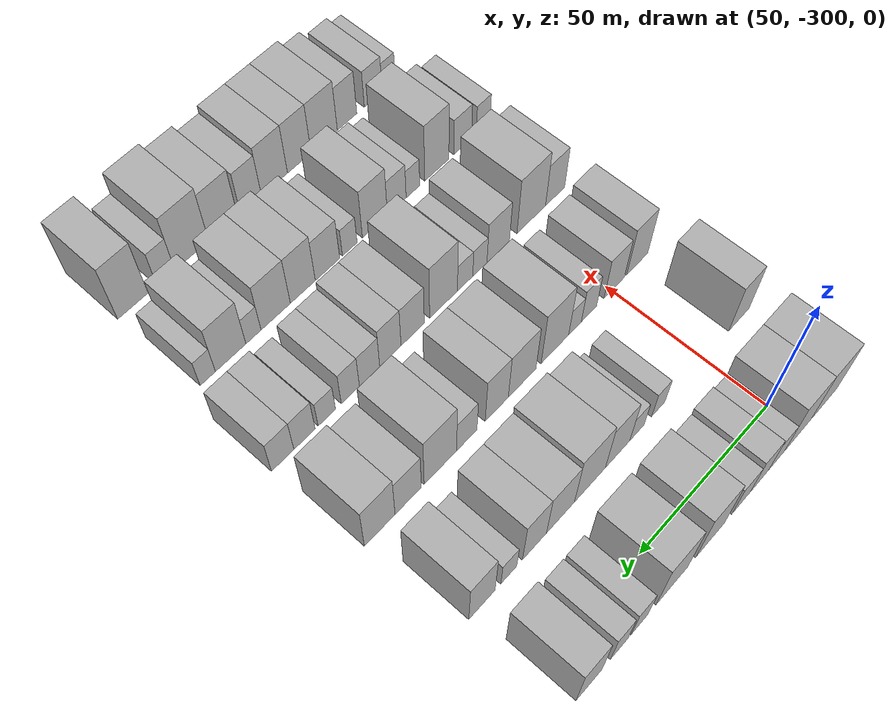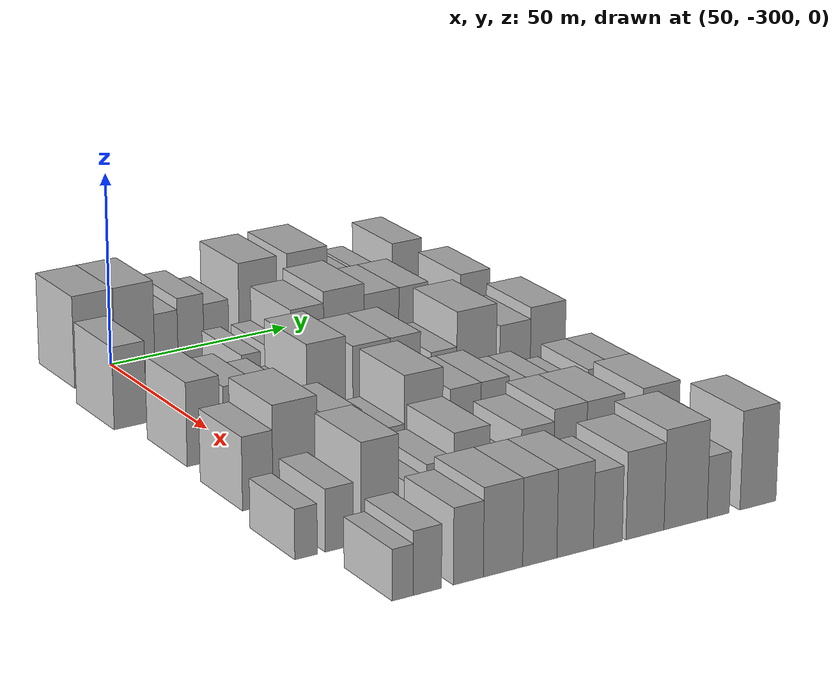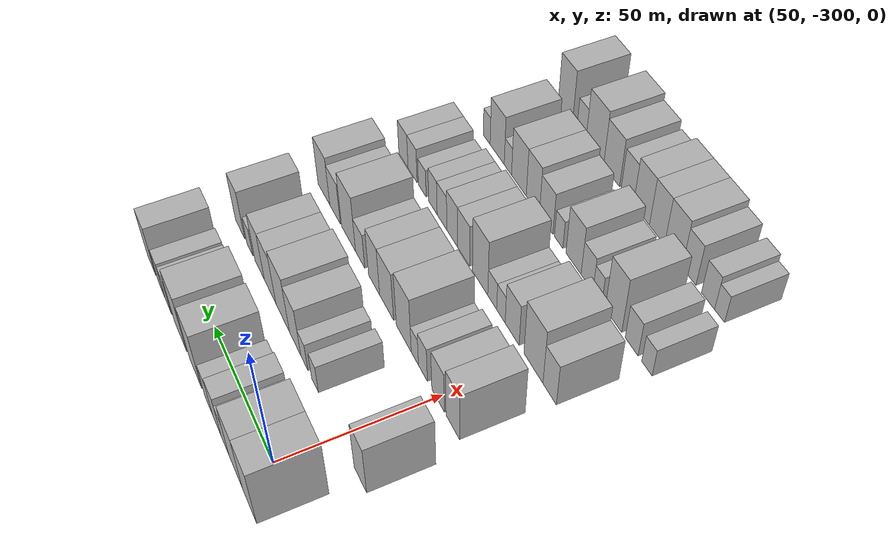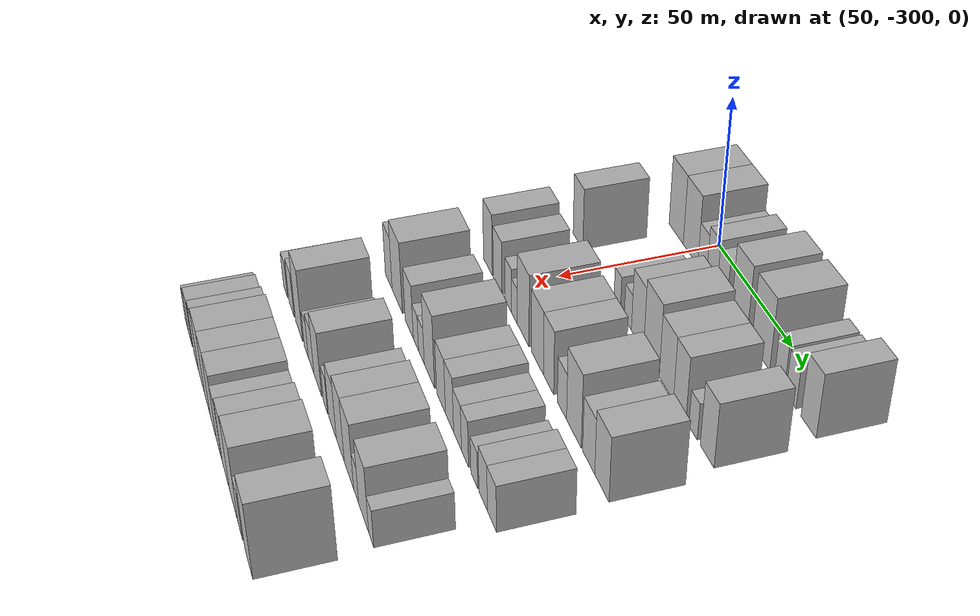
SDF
<sdf version="1.6">
 <world name="default">
  <model name="building_22">
   <static>1</static>
   <pose>50.0000 -309.6089 0 0.000000 0.000000 0.000000</pose>
   <link name="link">
    <pose>0 0 12.00 0 0 0</pose>
    <collision name="collision"><geometry><box><size>20.0000 11.1778 24.0000</size></box></geometry></collision>
    <visual name="visual">
     <cast_shadows>0</cast_shadows>
     <geometry><box><size>20.0000 11.1778 24.0000</size></box></geometry>
     <material>
      <script>
       <uri>model://HANNAS_wall/materials/scripts</uri>
       <uri>model://HANNAS_wall/materials/textures</uri>
       <name>vrc/HANNAS_wall</name>
      </script>
     </material>
    </visual>
   </link>
  </model>
  <model name="building_23">
   <static>1</static>
   <pose>50.0000 -298.4806 0 0.000000 0.000000 0.000000</pose>
   <link name="link">
    <pose>0 0 12.00 0 0 0</pose>
    <collision name="collision"><geometry><box><size>20.0000 11.0788 24.0000</size></box></geometry></collision>
    <visual name="visual">
     <cast_shadows>0</cast_shadows>
     <geometry><box><size>20.0000 11.0788 24.0000</size></box></geometry>
     <material>
      <script>
       <uri>model://HANNAS_wall/materials/scripts</uri>
       <uri>model://HANNAS_wall/materials/textures</uri>
       <name>vrc/HANNAS_wall</name>
      </script>
     </material>
    </visual>
   </link>
  </model>
  <model name="building_24">
   <static>1</static>
   <pose>50.0000 -289.6644 0 0.000000 0.000000 0.000000</pose>
   <link name="link">
    <pose>0 0 7.50 0 0 0</pose>
    <collision name="collision"><geometry><box><size>20.0000 6.5535 15.0000</size></box></geometry></collision>
    <visual name="visual">
     <cast_shadows>0</cast_shadows>
     <geometry><box><size>20.0000 6.5535 15.0000</size></box></geometry>
     <material>
      <script>
       <uri>model://HANNAS_wall/materials/scripts</uri>
       <uri>model://HANNAS_wall/materials/textures</uri>
       <name>vrc/HANNAS_wall</name>
      </script>
     </material>
    </visual>
   </link>
  </model>
  <model name="building_25">
   <static>1</static>
   <pose>50.0000 -282.7002 0 0.000000 0.000000 0.000000</pose>
   <link name="link">
    <pose>0 0 9.00 0 0 0</pose>
    <collision name="collision"><geometry><box><size>20.0000 7.3748 18.0000</size></box></geometry></collision>
    <visual name="visual">
     <cast_shadows>0</cast_shadows>
     <geometry><box><size>20.0000 7.3748 18.0000</size></box></geometry>
     <material>
      <script>
       <uri>model://HANNAS_wall/materials/scripts</uri>
       <uri>model://HANNAS_wall/materials/textures</uri>
       <name>vrc/HANNAS_wall</name>
      </script>
     </material>
    </visual>
   </link>
  </model>
  <model name="building_26">
   <static>1</static>
   <pose>50.0000 -275.4517 0 0.000000 0.000000 0.000000</pose>
   <link name="link">
    <pose>0 0 7.50 0 0 0</pose>
    <collision name="collision"><geometry><box><size>20.0000 7.1223 15.0000</size></box></geometry></collision>
    <visual name="visual">
     <cast_shadows>0</cast_shadows>
     <geometry><box><size>20.0000 7.1223 15.0000</size></box></geometry>
     <material>
      <script>
       <uri>model://HANNAS_wall/materials/scripts</uri>
       <uri>model://HANNAS_wall/materials/textures</uri>
       <name>vrc/HANNAS_wall</name>
      </script>
     </material>
    </visual>
   </link>
  </model>
  <model name="building_27">
   <static>1</static>
   <pose>50.0000 -263.3856 0 0.000000 0.000000 0.000000</pose>
   <link name="link">
    <pose>0 0 12.00 0 0 0</pose>
    <collision name="collision"><geometry><box><size>20.0000 11.0098 24.0000</size></box></geometry></collision>
    <visual name="visual">
     <cast_shadows>0</cast_shadows>
     <geometry><box><size>20.0000 11.0098 24.0000</size></box></geometry>
     <material>
      <script>
       <uri>model://HANNAS_wall/materials/scripts</uri>
       <uri>model://HANNAS_wall/materials/textures</uri>
       <name>vrc/HANNAS_wall</name>
      </script>
     </material>
    </visual>
   </link>
  </model>
  <model name="building_28">
   <static>1</static>
   <pose>50.0000 -248.9722 0 0.000000 0.000000 0.000000</pose>
   <link name="link">
    <pose>0 0 12.00 0 0 0</pose>
    <collision name="collision"><geometry><box><size>20.0000 11.8172 24.0000</size></box></geometry></collision>
    <visual name="visual">
     <cast_shadows>0</cast_shadows>
     <geometry><box><size>20.0000 11.8172 24.0000</size></box></geometry>
     <material>
      <script>
       <uri>model://HANNAS_wall/materials/scripts</uri>
       <uri>model://HANNAS_wall/materials/textures</uri>
       <name>vrc/HANNAS_wall</name>
      </script>
     </material>
    </visual>
   </link>
  </model>
  <model name="building_29">
   <static>1</static>
   <pose>50.0000 -236.9914 0 0.000000 0.000000 0.000000</pose>
   <link name="link">
    <pose>0 0 7.50 0 0 0</pose>
    <collision name="collision"><geometry><box><size>20.0000 6.1445 15.0000</size></box></geometry></collision>
    <visual name="visual">
     <cast_shadows>0</cast_shadows>
     <geometry><box><size>20.0000 6.1445 15.0000</size></box></geometry>
     <material>
      <script>
       <uri>model://HANNAS_wall/materials/scripts</uri>
       <uri>model://HANNAS_wall/materials/textures</uri>
       <name>vrc/HANNAS_wall</name>
      </script>
     </material>
    </visual>
   </link>
  </model>
  <model name="building_30">
   <static>1</static>
   <pose>50.0000 -229.8097 0 0.000000 0.000000 0.000000</pose>
   <link name="link">
    <pose>0 0 7.50 0 0 0</pose>
    <collision name="collision"><geometry><box><size>20.0000 6.2188 15.0000</size></box></geometry></collision>
    <visual name="visual">
     <cast_shadows>0</cast_shadows>
     <geometry><box><size>20.0000 6.2188 15.0000</size></box></geometry>
     <material>
      <script>
       <uri>model://HANNAS_wall/materials/scripts</uri>
       <uri>model://HANNAS_wall/materials/textures</uri>
       <name>vrc/HANNAS_wall</name>
      </script>
     </material>
    </visual>
   </link>
  </model>
  <model name="building_31">
   <static>1</static>
   <pose>50.0000 -219.2244 0 0.000000 0.000000 0.000000</pose>
   <link name="link">
    <pose>0 0 10.50 0 0 0</pose>
    <collision name="collision"><geometry><box><size>20.0000 8.9518 21.0000</size></box></geometry></collision>
    <visual name="visual">
     <cast_shadows>0</cast_shadows>
     <geometry><box><size>20.0000 8.9518 21.0000</size></box></geometry>
     <material>
      <script>
       <uri>model://HANNAS_wall/materials/scripts</uri>
       <uri>model://HANNAS_wall/materials/textures</uri>
       <name>vrc/HANNAS_wall</name>
      </script>
     </material>
    </visual>
   </link>
  </model>
  <model name="building_134">
   <static>1</static>
   <pose>79.0000 -314.8513 0 0.000000 0.000000 0.000000</pose>
   <link name="link">
    <pose>0 0 10.50 0 0 0</pose>
    <collision name="collision"><geometry><box><size>20.0000 8.6168 21.0000</size></box></geometry></collision>
    <visual name="visual">
     <cast_shadows>0</cast_shadows>
     <geometry><box><size>20.0000 8.6168 21.0000</size></box></geometry>
     <material>
      <script>
       <uri>model://HANNAS_wall/materials/scripts</uri>
       <uri>model://HANNAS_wall/materials/textures</uri>
       <name>vrc/HANNAS_wall</name>
      </script>
     </material>
    </visual>
   </link>
  </model>
  <model name="building_135">
   <static>1</static>
   <pose>79.0000 -281.6699 0 0.000000 0.000000 0.000000</pose>
   <link name="link">
    <pose>0 0 6.00 0 0 0</pose>
    <collision name="collision"><geometry><box><size>20.0000 5.2487 12.0000</size></box></geometry></collision>
    <visual name="visual">
     <cast_shadows>0</cast_shadows>
     <geometry><box><size>20.0000 5.2487 12.0000</size></box></geometry>
     <material>
      <script>
       <uri>model://HANNAS_wall/materials/scripts</uri>
       <uri>model://HANNAS_wall/materials/textures</uri>
       <name>vrc/HANNAS_wall</name>
      </script>
     </material>
    </visual>
   </link>
  </model>
  <model name="building_136">
   <static>1</static>
   <pose>79.0000 -273.2403 0 0.000000 0.000000 0.000000</pose>
   <link name="link">
    <pose>0 0 6.00 0 0 0</pose>
    <collision name="collision"><geometry><box><size>20.0000 5.6106 12.0000</size></box></geometry></collision>
    <visual name="visual">
     <cast_shadows>0</cast_shadows>
     <geometry><box><size>20.0000 5.6106 12.0000</size></box></geometry>
     <material>
      <script>
       <uri>model://HANNAS_wall/materials/scripts</uri>
       <uri>model://HANNAS_wall/materials/textures</uri>
       <name>vrc/HANNAS_wall</name>
      </script>
     </material>
    </visual>
   </link>
  </model>
  <model name="building_137">
   <static>1</static>
   <pose>79.0000 -265.7948 0 0.000000 0.000000 0.000000</pose>
   <link name="link">
    <pose>0 0 10.50 0 0 0</pose>
    <collision name="collision"><geometry><box><size>20.0000 9.2803 21.0000</size></box></geometry></collision>
    <visual name="visual">
     <cast_shadows>0</cast_shadows>
     <geometry><box><size>20.0000 9.2803 21.0000</size></box></geometry>
     <material>
      <script>
       <uri>model://HANNAS_wall/materials/scripts</uri>
       <uri>model://HANNAS_wall/materials/textures</uri>
       <name>vrc/HANNAS_wall</name>
      </script>
     </material>
    </visual>
   </link>
  </model>
  <model name="building_138">
   <static>1</static>
   <pose>79.0000 -255.3853 0 0.000000 0.000000 0.000000</pose>
   <link name="link">
    <pose>0 0 12.00 0 0 0</pose>
    <collision name="collision"><geometry><box><size>20.0000 11.5388 24.0000</size></box></geometry></collision>
    <visual name="visual">
     <cast_shadows>0</cast_shadows>
     <geometry><box><size>20.0000 11.5388 24.0000</size></box></geometry>
     <material>
      <script>
       <uri>model://HANNAS_wall/materials/scripts</uri>
       <uri>model://HANNAS_wall/materials/textures</uri>
       <name>vrc/HANNAS_wall</name>
      </script>
     </material>
    </visual>
   </link>
  </model>
  <model name="building_139">
   <static>1</static>
   <pose>79.0000 -244.5437 0 0.000000 0.000000 0.000000</pose>
   <link name="link">
    <pose>0 0 10.50 0 0 0</pose>
    <collision name="collision"><geometry><box><size>20.0000 10.1443 21.0000</size></box></geometry></collision>
    <visual name="visual">
     <cast_shadows>0</cast_shadows>
     <geometry><box><size>20.0000 10.1443 21.0000</size></box></geometry>
     <material>
      <script>
       <uri>model://HANNAS_wall/materials/scripts</uri>
       <uri>model://HANNAS_wall/materials/textures</uri>
       <name>vrc/HANNAS_wall</name>
      </script>
     </material>
    </visual>
   </link>
  </model>
  <model name="building_140">
   <static>1</static>
   <pose>79.0000 -235.1995 0 0.000000 0.000000 0.000000</pose>
   <link name="link">
    <pose>0 0 10.50 0 0 0</pose>
    <collision name="collision"><geometry><box><size>20.0000 8.5442 21.0000</size></box></geometry></collision>
    <visual name="visual">
     <cast_shadows>0</cast_shadows>
     <geometry><box><size>20.0000 8.5442 21.0000</size></box></geometry>
     <material>
      <script>
       <uri>model://HANNAS_wall/materials/scripts</uri>
       <uri>model://HANNAS_wall/materials/textures</uri>
       <name>vrc/HANNAS_wall</name>
      </script>
     </material>
    </visual>
   </link>
  </model>
  <model name="building_141">
   <static>1</static>
   <pose>79.0000 -226.1584 0 0.000000 0.000000 0.000000</pose>
   <link name="link">
    <pose>0 0 6.00 0 0 0</pose>
    <collision name="collision"><geometry><box><size>20.0000 5.5380 12.0000</size></box></geometry></collision>
    <visual name="visual">
     <cast_shadows>0</cast_shadows>
     <geometry><box><size>20.0000 5.5380 12.0000</size></box></geometry>
     <material>
      <script>
       <uri>model://HANNAS_wall/materials/scripts</uri>
       <uri>model://HANNAS_wall/materials/textures</uri>
       <name>vrc/HANNAS_wall</name>
      </script>
     </material>
    </visual>
   </link>
  </model>
  <model name="building_142">
   <static>1</static>
   <pose>79.0000 -216.9311 0 0.000000 0.000000 0.000000</pose>
   <link name="link">
    <pose>0 0 10.50 0 0 0</pose>
    <collision name="collision"><geometry><box><size>20.0000 8.9164 21.0000</size></box></geometry></collision>
    <visual name="visual">
     <cast_shadows>0</cast_shadows>
     <geometry><box><size>20.0000 8.9164 21.0000</size></box></geometry>
     <material>
      <script>
       <uri>model://HANNAS_wall/materials/scripts</uri>
       <uri>model://HANNAS_wall/materials/textures</uri>
       <name>vrc/HANNAS_wall</name>
      </script>
     </material>
    </visual>
   </link>
  </model>
  <model name="building_243">
   <static>1</static>
   <pose>108.0000 -310.6300 0 0.000000 0.000000 0.000000</pose>
   <link name="link">
    <pose>0 0 10.50 0 0 0</pose>
    <collision name="collision"><geometry><box><size>20.0000 8.7173 21.0000</size></box></geometry></collision>
    <visual name="visual">
     <cast_shadows>0</cast_shadows>
     <geometry><box><size>20.0000 8.7173 21.0000</size></box></geometry>
     <material>
      <script>
       <uri>model://HANNAS_wall/materials/scripts</uri>
       <uri>model://HANNAS_wall/materials/textures</uri>
       <name>vrc/HANNAS_wall</name>
      </script>
     </material>
    </visual>
   </link>
  </model>
  <model name="building_244">
   <static>1</static>
   <pose>108.0000 -301.1037 0 0.000000 0.000000 0.000000</pose>
   <link name="link">
    <pose>0 0 9.00 0 0 0</pose>
    <collision name="collision"><geometry><box><size>20.0000 8.3353 18.0000</size></box></geometry></collision>
    <visual name="visual">
     <cast_shadows>0</cast_shadows>
     <geometry><box><size>20.0000 8.3353 18.0000</size></box></geometry>
     <material>
      <script>
       <uri>model://HANNAS_wall/materials/scripts</uri>
       <uri>model://HANNAS_wall/materials/textures</uri>
       <name>vrc/HANNAS_wall</name>
      </script>
     </material>
    </visual>
   </link>
  </model>
  <model name="building_245">
   <static>1</static>
   <pose>108.0000 -290.8894 0 0.000000 0.000000 0.000000</pose>
   <link name="link">
    <pose>0 0 7.50 0 0 0</pose>
    <collision name="collision"><geometry><box><size>20.0000 6.0933 15.0000</size></box></geometry></collision>
    <visual name="visual">
     <cast_shadows>0</cast_shadows>
     <geometry><box><size>20.0000 6.0933 15.0000</size></box></geometry>
     <material>
      <script>
       <uri>model://HANNAS_wall/materials/scripts</uri>
       <uri>model://HANNAS_wall/materials/textures</uri>
       <name>vrc/HANNAS_wall</name>
      </script>
     </material>
    </visual>
   </link>
  </model>
  <model name="building_246">
   <static>1</static>
   <pose>108.0000 -285.3274 0 0.000000 0.000000 0.000000</pose>
   <link name="link">
    <pose>0 0 6.00 0 0 0</pose>
    <collision name="collision"><geometry><box><size>20.0000 5.0305 12.0000</size></box></geometry></collision>
    <visual name="visual">
     <cast_shadows>0</cast_shadows>
     <geometry><box><size>20.0000 5.0305 12.0000</size></box></geometry>
     <material>
      <script>
       <uri>model://HANNAS_wall/materials/scripts</uri>
       <uri>model://HANNAS_wall/materials/textures</uri>
       <name>vrc/HANNAS_wall</name>
      </script>
     </material>
    </visual>
   </link>
  </model>
  <model name="building_247">
   <static>1</static>
   <pose>108.0000 -277.4710 0 0.000000 0.000000 0.000000</pose>
   <link name="link">
    <pose>0 0 12.00 0 0 0</pose>
    <collision name="collision"><geometry><box><size>20.0000 10.6824 24.0000</size></box></geometry></collision>
    <visual name="visual">
     <cast_shadows>0</cast_shadows>
     <geometry><box><size>20.0000 10.6824 24.0000</size></box></geometry>
     <material>
      <script>
       <uri>model://HANNAS_wall/materials/scripts</uri>
       <uri>model://HANNAS_wall/materials/textures</uri>
       <name>vrc/HANNAS_wall</name>
      </script>
     </material>
    </visual>
   </link>
  </model>
  <model name="building_248">
   <static>1</static>
   <pose>108.0000 -264.9230 0 0.000000 0.000000 0.000000</pose>
   <link name="link">
    <pose>0 0 10.50 0 0 0</pose>
    <collision name="collision"><geometry><box><size>20.0000 10.4135 21.0000</size></box></geometry></collision>
    <visual name="visual">
     <cast_shadows>0</cast_shadows>
     <geometry><box><size>20.0000 10.4135 21.0000</size></box></geometry>
     <material>
      <script>
       <uri>model://HANNAS_wall/materials/scripts</uri>
       <uri>model://HANNAS_wall/materials/textures</uri>
       <name>vrc/HANNAS_wall</name>
      </script>
     </material>
    </visual>
   </link>
  </model>
  <model name="building_249">
   <static>1</static>
   <pose>108.0000 -255.4557 0 0.000000 0.000000 0.000000</pose>
   <link name="link">
    <pose>0 0 10.50 0 0 0</pose>
    <collision name="collision"><geometry><box><size>20.0000 8.5211 21.0000</size></box></geometry></collision>
    <visual name="visual">
     <cast_shadows>0</cast_shadows>
     <geometry><box><size>20.0000 8.5211 21.0000</size></box></geometry>
     <material>
      <script>
       <uri>model://HANNAS_wall/materials/scripts</uri>
       <uri>model://HANNAS_wall/materials/textures</uri>
       <name>vrc/HANNAS_wall</name>
      </script>
     </material>
    </visual>
   </link>
  </model>
  <model name="building_250">
   <static>1</static>
   <pose>108.0000 -244.5166 0 0.000000 0.000000 0.000000</pose>
   <link name="link">
    <pose>0 0 7.50 0 0 0</pose>
    <collision name="collision"><geometry><box><size>20.0000 7.3570 15.0000</size></box></geometry></collision>
    <visual name="visual">
     <cast_shadows>0</cast_shadows>
     <geometry><box><size>20.0000 7.3570 15.0000</size></box></geometry>
     <material>
      <script>
       <uri>model://HANNAS_wall/materials/scripts</uri>
       <uri>model://HANNAS_wall/materials/textures</uri>
       <name>vrc/HANNAS_wall</name>
      </script>
     </material>
    </visual>
   </link>
  </model>
  <model name="building_251">
   <static>1</static>
   <pose>108.0000 -235.1324 0 0.000000 0.000000 0.000000</pose>
   <link name="link">
    <pose>0 0 12.00 0 0 0</pose>
    <collision name="collision"><geometry><box><size>20.0000 11.4116 24.0000</size></box></geometry></collision>
    <visual name="visual">
     <cast_shadows>0</cast_shadows>
     <geometry><box><size>20.0000 11.4116 24.0000</size></box></geometry>
     <material>
      <script>
       <uri>model://HANNAS_wall/materials/scripts</uri>
       <uri>model://HANNAS_wall/materials/textures</uri>
       <name>vrc/HANNAS_wall</name>
      </script>
     </material>
    </visual>
   </link>
  </model>
  <model name="building_252">
   <static>1</static>
   <pose>108.0000 -223.9302 0 0.000000 0.000000 0.000000</pose>
   <link name="link">
    <pose>0 0 9.00 0 0 0</pose>
    <collision name="collision"><geometry><box><size>20.0000 8.9927 18.0000</size></box></geometry></collision>
    <visual name="visual">
     <cast_shadows>0</cast_shadows>
     <geometry><box><size>20.0000 8.9927 18.0000</size></box></geometry>
     <material>
      <script>
       <uri>model://HANNAS_wall/materials/scripts</uri>
       <uri>model://HANNAS_wall/materials/textures</uri>
       <name>vrc/HANNAS_wall</name>
      </script>
     </material>
    </visual>
   </link>
  </model>
  <model name="building_253">
   <static>1</static>
   <pose>108.0000 -214.2847 0 0.000000 0.000000 0.000000</pose>
   <link name="link">
    <pose>0 0 10.50 0 0 0</pose>
    <collision name="collision"><geometry><box><size>20.0000 10.2983 21.0000</size></box></geometry></collision>
    <visual name="visual">
     <cast_shadows>0</cast_shadows>
     <geometry><box><size>20.0000 10.2983 21.0000</size></box></geometry>
     <material>
      <script>
       <uri>model://HANNAS_wall/materials/scripts</uri>
       <uri>model://HANNAS_wall/materials/textures</uri>
       <name>vrc/HANNAS_wall</name>
      </script>
     </material>
    </visual>
   </link>
  </model>
  <model name="building_350">
   <static>1</static>
   <pose>137.0000 -312.4809 0 0.000000 0.000000 0.000000</pose>
   <link name="link">
    <pose>0 0 9.00 0 0 0</pose>
    <collision name="collision"><geometry><box><size>20.0000 7.8880 18.0000</size></box></geometry></collision>
    <visual name="visual">
     <cast_shadows>0</cast_shadows>
     <geometry><box><size>20.0000 7.8880 18.0000</size></box></geometry>
     <material>
      <script>
       <uri>model://HANNAS_wall/materials/scripts</uri>
       <uri>model://HANNAS_wall/materials/textures</uri>
       <name>vrc/HANNAS_wall</name>
      </script>
     </material>
    </visual>
   </link>
  </model>
  <model name="building_351">
   <static>1</static>
   <pose>137.0000 -302.7353 0 0.000000 0.000000 0.000000</pose>
   <link name="link">
    <pose>0 0 12.00 0 0 0</pose>
    <collision name="collision"><geometry><box><size>20.0000 11.6031 24.0000</size></box></geometry></collision>
    <visual name="visual">
     <cast_shadows>0</cast_shadows>
     <geometry><box><size>20.0000 11.6031 24.0000</size></box></geometry>
     <material>
      <script>
       <uri>model://HANNAS_wall/materials/scripts</uri>
       <uri>model://HANNAS_wall/materials/textures</uri>
       <name>vrc/HANNAS_wall</name>
      </script>
     </material>
    </visual>
   </link>
  </model>
  <model name="building_352">
   <static>1</static>
   <pose>137.0000 -289.4934 0 0.000000 0.000000 0.000000</pose>
   <link name="link">
    <pose>0 0 9.00 0 0 0</pose>
    <collision name="collision"><geometry><box><size>20.0000 8.8807 18.0000</size></box></geometry></collision>
    <visual name="visual">
     <cast_shadows>0</cast_shadows>
     <geometry><box><size>20.0000 8.8807 18.0000</size></box></geometry>
     <material>
      <script>
       <uri>model://HANNAS_wall/materials/scripts</uri>
       <uri>model://HANNAS_wall/materials/textures</uri>
       <name>vrc/HANNAS_wall</name>
      </script>
     </material>
    </visual>
   </link>
  </model>
  <model name="building_353">
   <static>1</static>
   <pose>137.0000 -282.2923 0 0.000000 0.000000 0.000000</pose>
   <link name="link">
    <pose>0 0 6.00 0 0 0</pose>
    <collision name="collision"><geometry><box><size>20.0000 5.5217 12.0000</size></box></geometry></collision>
    <visual name="visual">
     <cast_shadows>0</cast_shadows>
     <geometry><box><size>20.0000 5.5217 12.0000</size></box></geometry>
     <material>
      <script>
       <uri>model://HANNAS_wall/materials/scripts</uri>
       <uri>model://HANNAS_wall/materials/textures</uri>
       <name>vrc/HANNAS_wall</name>
      </script>
     </material>
    </visual>
   </link>
  </model>
  <model name="building_354">
   <static>1</static>
   <pose>137.0000 -276.5792 0 0.000000 0.000000 0.000000</pose>
   <link name="link">
    <pose>0 0 6.00 0 0 0</pose>
    <collision name="collision"><geometry><box><size>20.0000 5.9044 12.0000</size></box></geometry></collision>
    <visual name="visual">
     <cast_shadows>0</cast_shadows>
     <geometry><box><size>20.0000 5.9044 12.0000</size></box></geometry>
     <material>
      <script>
       <uri>model://HANNAS_wall/materials/scripts</uri>
       <uri>model://HANNAS_wall/materials/textures</uri>
       <name>vrc/HANNAS_wall</name>
      </script>
     </material>
    </visual>
   </link>
  </model>
  <model name="building_355">
   <static>1</static>
   <pose>137.0000 -268.3954 0 0.000000 0.000000 0.000000</pose>
   <link name="link">
    <pose>0 0 12.00 0 0 0</pose>
    <collision name="collision"><geometry><box><size>20.0000 10.4631 24.0000</size></box></geometry></collision>
    <visual name="visual">
     <cast_shadows>0</cast_shadows>
     <geometry><box><size>20.0000 10.4631 24.0000</size></box></geometry>
     <material>
      <script>
       <uri>model://HANNAS_wall/materials/scripts</uri>
       <uri>model://HANNAS_wall/materials/textures</uri>
       <name>vrc/HANNAS_wall</name>
      </script>
     </material>
    </visual>
   </link>
  </model>
  <model name="building_356">
   <static>1</static>
   <pose>137.0000 -256.8860 0 0.000000 0.000000 0.000000</pose>
   <link name="link">
    <pose>0 0 9.00 0 0 0</pose>
    <collision name="collision"><geometry><box><size>20.0000 8.5557 18.0000</size></box></geometry></collision>
    <visual name="visual">
     <cast_shadows>0</cast_shadows>
     <geometry><box><size>20.0000 8.5557 18.0000</size></box></geometry>
     <material>
      <script>
       <uri>model://HANNAS_wall/materials/scripts</uri>
       <uri>model://HANNAS_wall/materials/textures</uri>
       <name>vrc/HANNAS_wall</name>
      </script>
     </material>
    </visual>
   </link>
  </model>
  <model name="building_357">
   <static>1</static>
   <pose>137.0000 -248.7501 0 0.000000 0.000000 0.000000</pose>
   <link name="link">
    <pose>0 0 9.00 0 0 0</pose>
    <collision name="collision"><geometry><box><size>20.0000 7.7160 18.0000</size></box></geometry></collision>
    <visual name="visual">
     <cast_shadows>0</cast_shadows>
     <geometry><box><size>20.0000 7.7160 18.0000</size></box></geometry>
     <material>
      <script>
       <uri>model://HANNAS_wall/materials/scripts</uri>
       <uri>model://HANNAS_wall/materials/textures</uri>
       <name>vrc/HANNAS_wall</name>
      </script>
     </material>
    </visual>
   </link>
  </model>
  <model name="building_358">
   <static>1</static>
   <pose>137.0000 -241.2858 0 0.000000 0.000000 0.000000</pose>
   <link name="link">
    <pose>0 0 7.50 0 0 0</pose>
    <collision name="collision"><geometry><box><size>20.0000 7.2126 15.0000</size></box></geometry></collision>
    <visual name="visual">
     <cast_shadows>0</cast_shadows>
     <geometry><box><size>20.0000 7.2126 15.0000</size></box></geometry>
     <material>
      <script>
       <uri>model://HANNAS_wall/materials/scripts</uri>
       <uri>model://HANNAS_wall/materials/textures</uri>
       <name>vrc/HANNAS_wall</name>
      </script>
     </material>
    </visual>
   </link>
  </model>
  <model name="building_359">
   <static>1</static>
   <pose>137.0000 -234.5107 0 0.000000 0.000000 0.000000</pose>
   <link name="link">
    <pose>0 0 7.50 0 0 0</pose>
    <collision name="collision"><geometry><box><size>20.0000 6.3376 15.0000</size></box></geometry></collision>
    <visual name="visual">
     <cast_shadows>0</cast_shadows>
     <geometry><box><size>20.0000 6.3376 15.0000</size></box></geometry>
     <material>
      <script>
       <uri>model://HANNAS_wall/materials/scripts</uri>
       <uri>model://HANNAS_wall/materials/textures</uri>
       <name>vrc/HANNAS_wall</name>
      </script>
     </material>
    </visual>
   </link>
  </model>
  <model name="building_360">
   <static>1</static>
   <pose>137.0000 -226.3486 0 0.000000 0.000000 0.000000</pose>
   <link name="link">
    <pose>0 0 6.00 0 0 0</pose>
    <collision name="collision"><geometry><box><size>20.0000 5.9867 12.0000</size></box></geometry></collision>
    <visual name="visual">
     <cast_shadows>0</cast_shadows>
     <geometry><box><size>20.0000 5.9867 12.0000</size></box></geometry>
     <material>
      <script>
       <uri>model://HANNAS_wall/materials/scripts</uri>
       <uri>model://HANNAS_wall/materials/textures</uri>
       <name>vrc/HANNAS_wall</name>
      </script>
     </material>
    </visual>
   </link>
  </model>
  <model name="building_361">
   <static>1</static>
   <pose>137.0000 -218.7567 0 0.000000 0.000000 0.000000</pose>
   <link name="link">
    <pose>0 0 7.50 0 0 0</pose>
    <collision name="collision"><geometry><box><size>20.0000 7.1970 15.0000</size></box></geometry></collision>
    <visual name="visual">
     <cast_shadows>0</cast_shadows>
     <geometry><box><size>20.0000 7.1970 15.0000</size></box></geometry>
     <material>
      <script>
       <uri>model://HANNAS_wall/materials/scripts</uri>
       <uri>model://HANNAS_wall/materials/textures</uri>
       <name>vrc/HANNAS_wall</name>
      </script>
     </material>
    </visual>
   </link>
  </model>
  <model name="building_362">
   <static>1</static>
   <pose>137.0000 -211.4290 0 0.000000 0.000000 0.000000</pose>
   <link name="link">
    <pose>0 0 7.50 0 0 0</pose>
    <collision name="collision"><geometry><box><size>20.0000 7.4584 15.0000</size></box></geometry></collision>
    <visual name="visual">
     <cast_shadows>0</cast_shadows>
     <geometry><box><size>20.0000 7.4584 15.0000</size></box></geometry>
     <material>
      <script>
       <uri>model://HANNAS_wall/materials/scripts</uri>
       <uri>model://HANNAS_wall/materials/textures</uri>
       <name>vrc/HANNAS_wall</name>
      </script>
     </material>
    </visual>
   </link>
  </model>
  <model name="building_468">
   <static>1</static>
   <pose>166.0000 -316.7112 0 0.000000 0.000000 0.000000</pose>
   <link name="link">
    <pose>0 0 6.00 0 0 0</pose>
    <collision name="collision"><geometry><box><size>20.0000 5.6934 12.0000</size></box></geometry></collision>
    <visual name="visual">
     <cast_shadows>0</cast_shadows>
     <geometry><box><size>20.0000 5.6934 12.0000</size></box></geometry>
     <material>
      <script>
       <uri>model://HANNAS_wall/materials/scripts</uri>
       <uri>model://HANNAS_wall/materials/textures</uri>
       <name>vrc/HANNAS_wall</name>
      </script>
     </material>
    </visual>
   </link>
  </model>
  <model name="building_469">
   <static>1</static>
   <pose>166.0000 -308.2614 0 0.000000 0.000000 0.000000</pose>
   <link name="link">
    <pose>0 0 7.50 0 0 0</pose>
    <collision name="collision"><geometry><box><size>20.0000 7.2061 15.0000</size></box></geometry></collision>
    <visual name="visual">
     <cast_shadows>0</cast_shadows>
     <geometry><box><size>20.0000 7.2061 15.0000</size></box></geometry>
     <material>
      <script>
       <uri>model://HANNAS_wall/materials/scripts</uri>
       <uri>model://HANNAS_wall/materials/textures</uri>
       <name>vrc/HANNAS_wall</name>
      </script>
     </material>
    </visual>
   </link>
  </model>
  <model name="building_470">
   <static>1</static>
   <pose>166.0000 -297.8487 0 0.000000 0.000000 0.000000</pose>
   <link name="link">
    <pose>0 0 12.00 0 0 0</pose>
    <collision name="collision"><geometry><box><size>20.0000 9.6193 24.0000</size></box></geometry></collision>
    <visual name="visual">
     <cast_shadows>0</cast_shadows>
     <geometry><box><size>20.0000 9.6193 24.0000</size></box></geometry>
     <material>
      <script>
       <uri>model://HANNAS_wall/materials/scripts</uri>
       <uri>model://HANNAS_wall/materials/textures</uri>
       <name>vrc/HANNAS_wall</name>
      </script>
     </material>
    </visual>
   </link>
  </model>
  <model name="building_471">
   <static>1</static>
   <pose>166.0000 -288.3853 0 0.000000 0.000000 0.000000</pose>
   <link name="link">
    <pose>0 0 6.00 0 0 0</pose>
    <collision name="collision"><geometry><box><size>20.0000 5.3074 12.0000</size></box></geometry></collision>
    <visual name="visual">
     <cast_shadows>0</cast_shadows>
     <geometry><box><size>20.0000 5.3074 12.0000</size></box></geometry>
     <material>
      <script>
       <uri>model://HANNAS_wall/materials/scripts</uri>
       <uri>model://HANNAS_wall/materials/textures</uri>
       <name>vrc/HANNAS_wall</name>
      </script>
     </material>
    </visual>
   </link>
  </model>
  <model name="building_472">
   <static>1</static>
   <pose>166.0000 -282.1130 0 0.000000 0.000000 0.000000</pose>
   <link name="link">
    <pose>0 0 7.50 0 0 0</pose>
    <collision name="collision"><geometry><box><size>20.0000 7.2373 15.0000</size></box></geometry></collision>
    <visual name="visual">
     <cast_shadows>0</cast_shadows>
     <geometry><box><size>20.0000 7.2373 15.0000</size></box></geometry>
     <material>
      <script>
       <uri>model://HANNAS_wall/materials/scripts</uri>
       <uri>model://HANNAS_wall/materials/textures</uri>
       <name>vrc/HANNAS_wall</name>
      </script>
     </material>
    </visual>
   </link>
  </model>
  <model name="building_473">
   <static>1</static>
   <pose>166.0000 -273.7564 0 0.000000 0.000000 0.000000</pose>
   <link name="link">
    <pose>0 0 10.50 0 0 0</pose>
    <collision name="collision"><geometry><box><size>20.0000 9.4758 21.0000</size></box></geometry></collision>
    <visual name="visual">
     <cast_shadows>0</cast_shadows>
     <geometry><box><size>20.0000 9.4758 21.0000</size></box></geometry>
     <material>
      <script>
       <uri>model://HANNAS_wall/materials/scripts</uri>
       <uri>model://HANNAS_wall/materials/textures</uri>
       <name>vrc/HANNAS_wall</name>
      </script>
     </material>
    </visual>
   </link>
  </model>
  <model name="building_474">
   <static>1</static>
   <pose>166.0000 -264.3014 0 0.000000 0.000000 0.000000</pose>
   <link name="link">
    <pose>0 0 6.00 0 0 0</pose>
    <collision name="collision"><geometry><box><size>20.0000 5.4342 12.0000</size></box></geometry></collision>
    <visual name="visual">
     <cast_shadows>0</cast_shadows>
     <geometry><box><size>20.0000 5.4342 12.0000</size></box></geometry>
     <material>
      <script>
       <uri>model://HANNAS_wall/materials/scripts</uri>
       <uri>model://HANNAS_wall/materials/textures</uri>
       <name>vrc/HANNAS_wall</name>
      </script>
     </material>
    </visual>
   </link>
  </model>
  <model name="building_475">
   <static>1</static>
   <pose>166.0000 -256.1188 0 0.000000 0.000000 0.000000</pose>
   <link name="link">
    <pose>0 0 9.00 0 0 0</pose>
    <collision name="collision"><geometry><box><size>20.0000 8.9310 18.0000</size></box></geometry></collision>
    <visual name="visual">
     <cast_shadows>0</cast_shadows>
     <geometry><box><size>20.0000 8.9310 18.0000</size></box></geometry>
     <material>
      <script>
       <uri>model://HANNAS_wall/materials/scripts</uri>
       <uri>model://HANNAS_wall/materials/textures</uri>
       <name>vrc/HANNAS_wall</name>
      </script>
     </material>
    </visual>
   </link>
  </model>
  <model name="building_476">
   <static>1</static>
   <pose>166.0000 -247.1712 0 0.000000 0.000000 0.000000</pose>
   <link name="link">
    <pose>0 0 10.50 0 0 0</pose>
    <collision name="collision"><geometry><box><size>20.0000 8.9641 21.0000</size></box></geometry></collision>
    <visual name="visual">
     <cast_shadows>0</cast_shadows>
     <geometry><box><size>20.0000 8.9641 21.0000</size></box></geometry>
     <material>
      <script>
       <uri>model://HANNAS_wall/materials/scripts</uri>
       <uri>model://HANNAS_wall/materials/textures</uri>
       <name>vrc/HANNAS_wall</name>
      </script>
     </material>
    </visual>
   </link>
  </model>
  <model name="building_477">
   <static>1</static>
   <pose>166.0000 -237.5353 0 0.000000 0.000000 0.000000</pose>
   <link name="link">
    <pose>0 0 10.50 0 0 0</pose>
    <collision name="collision"><geometry><box><size>20.0000 10.3077 21.0000</size></box></geometry></collision>
    <visual name="visual">
     <cast_shadows>0</cast_shadows>
     <geometry><box><size>20.0000 10.3077 21.0000</size></box></geometry>
     <material>
      <script>
       <uri>model://HANNAS_wall/materials/scripts</uri>
       <uri>model://HANNAS_wall/materials/textures</uri>
       <name>vrc/HANNAS_wall</name>
      </script>
     </material>
    </visual>
   </link>
  </model>
  <model name="building_478">
   <static>1</static>
   <pose>166.0000 -229.7660 0 0.000000 0.000000 0.000000</pose>
   <link name="link">
    <pose>0 0 6.00 0 0 0</pose>
    <collision name="collision"><geometry><box><size>20.0000 5.2308 12.0000</size></box></geometry></collision>
    <visual name="visual">
     <cast_shadows>0</cast_shadows>
     <geometry><box><size>20.0000 5.2308 12.0000</size></box></geometry>
     <material>
      <script>
       <uri>model://HANNAS_wall/materials/scripts</uri>
       <uri>model://HANNAS_wall/materials/textures</uri>
       <name>vrc/HANNAS_wall</name>
      </script>
     </material>
    </visual>
   </link>
  </model>
  <model name="building_479">
   <static>1</static>
   <pose>166.0000 -221.9774 0 0.000000 0.000000 0.000000</pose>
   <link name="link">
    <pose>0 0 10.50 0 0 0</pose>
    <collision name="collision"><geometry><box><size>20.0000 10.3465 21.0000</size></box></geometry></collision>
    <visual name="visual">
     <cast_shadows>0</cast_shadows>
     <geometry><box><size>20.0000 10.3465 21.0000</size></box></geometry>
     <material>
      <script>
       <uri>model://HANNAS_wall/materials/scripts</uri>
       <uri>model://HANNAS_wall/materials/textures</uri>
       <name>vrc/HANNAS_wall</name>
      </script>
     </material>
    </visual>
   </link>
  </model>
  <model name="building_480">
   <static>1</static>
   <pose>166.0000 -214.2443 0 0.000000 0.000000 0.000000</pose>
   <link name="link">
    <pose>0 0 6.00 0 0 0</pose>
    <collision name="collision"><geometry><box><size>20.0000 5.1197 12.0000</size></box></geometry></collision>
    <visual name="visual">
     <cast_shadows>0</cast_shadows>
     <geometry><box><size>20.0000 5.1197 12.0000</size></box></geometry>
     <material>
      <script>
       <uri>model://HANNAS_wall/materials/scripts</uri>
       <uri>model://HANNAS_wall/materials/textures</uri>
       <name>vrc/HANNAS_wall</name>
      </script>
     </material>
    </visual>
   </link>
  </model>
  <model name="building_587">
   <static>1</static>
   <pose>195.0000 -309.7844 0 0.000000 0.000000 0.000000</pose>
   <link name="link">
    <pose>0 0 6.00 0 0 0</pose>
    <collision name="collision"><geometry><box><size>20.0000 5.2930 12.0000</size></box></geometry></collision>
    <visual name="visual">
     <cast_shadows>0</cast_shadows>
     <geometry><box><size>20.0000 5.2930 12.0000</size></box></geometry>
     <material>
      <script>
       <uri>model://HANNAS_wall/materials/scripts</uri>
       <uri>model://HANNAS_wall/materials/textures</uri>
       <name>vrc/HANNAS_wall</name>
      </script>
     </material>
    </visual>
   </link>
  </model>
  <model name="building_588">
   <static>1</static>
   <pose>195.0000 -303.5916 0 0.000000 0.000000 0.000000</pose>
   <link name="link">
    <pose>0 0 7.50 0 0 0</pose>
    <collision name="collision"><geometry><box><size>20.0000 7.0927 15.0000</size></box></geometry></collision>
    <visual name="visual">
     <cast_shadows>0</cast_shadows>
     <geometry><box><size>20.0000 7.0927 15.0000</size></box></geometry>
     <material>
      <script>
       <uri>model://HANNAS_wall/materials/scripts</uri>
       <uri>model://HANNAS_wall/materials/textures</uri>
       <name>vrc/HANNAS_wall</name>
      </script>
     </material>
    </visual>
   </link>
  </model>
  <model name="building_589">
   <static>1</static>
   <pose>195.0000 -293.2246 0 0.000000 0.000000 0.000000</pose>
   <link name="link">
    <pose>0 0 9.00 0 0 0</pose>
    <collision name="collision"><geometry><box><size>20.0000 7.6413 18.0000</size></box></geometry></collision>
    <visual name="visual">
     <cast_shadows>0</cast_shadows>
     <geometry><box><size>20.0000 7.6413 18.0000</size></box></geometry>
     <material>
      <script>
       <uri>model://HANNAS_wall/materials/scripts</uri>
       <uri>model://HANNAS_wall/materials/textures</uri>
       <name>vrc/HANNAS_wall</name>
      </script>
     </material>
    </visual>
   </link>
  </model>
  <model name="building_590">
   <static>1</static>
   <pose>195.0000 -284.3186 0 0.000000 0.000000 0.000000</pose>
   <link name="link">
    <pose>0 0 10.50 0 0 0</pose>
    <collision name="collision"><geometry><box><size>20.0000 10.1708 21.0000</size></box></geometry></collision>
    <visual name="visual">
     <cast_shadows>0</cast_shadows>
     <geometry><box><size>20.0000 10.1708 21.0000</size></box></geometry>
     <material>
      <script>
       <uri>model://HANNAS_wall/materials/scripts</uri>
       <uri>model://HANNAS_wall/materials/textures</uri>
       <name>vrc/HANNAS_wall</name>
      </script>
     </material>
    </visual>
   </link>
  </model>
  <model name="building_591">
   <static>1</static>
   <pose>195.0000 -274.7689 0 0.000000 0.000000 0.000000</pose>
   <link name="link">
    <pose>0 0 10.50 0 0 0</pose>
    <collision name="collision"><geometry><box><size>20.0000 8.9285 21.0000</size></box></geometry></collision>
    <visual name="visual">
     <cast_shadows>0</cast_shadows>
     <geometry><box><size>20.0000 8.9285 21.0000</size></box></geometry>
     <material>
      <script>
       <uri>model://HANNAS_wall/materials/scripts</uri>
       <uri>model://HANNAS_wall/materials/textures</uri>
       <name>vrc/HANNAS_wall</name>
      </script>
     </material>
    </visual>
   </link>
  </model>
  <model name="building_592">
   <static>1</static>
   <pose>195.0000 -265.4587 0 0.000000 0.000000 0.000000</pose>
   <link name="link">
    <pose>0 0 10.50 0 0 0</pose>
    <collision name="collision"><geometry><box><size>20.0000 9.6919 21.0000</size></box></geometry></collision>
    <visual name="visual">
     <cast_shadows>0</cast_shadows>
     <geometry><box><size>20.0000 9.6919 21.0000</size></box></geometry>
     <material>
      <script>
       <uri>model://HANNAS_wall/materials/scripts</uri>
       <uri>model://HANNAS_wall/materials/textures</uri>
       <name>vrc/HANNAS_wall</name>
      </script>
     </material>
    </visual>
   </link>
  </model>
  <model name="building_593">
   <static>1</static>
   <pose>195.0000 -256.7607 0 0.000000 0.000000 0.000000</pose>
   <link name="link">
    <pose>0 0 9.00 0 0 0</pose>
    <collision name="collision"><geometry><box><size>20.0000 7.7042 18.0000</size></box></geometry></collision>
    <visual name="visual">
     <cast_shadows>0</cast_shadows>
     <geometry><box><size>20.0000 7.7042 18.0000</size></box></geometry>
     <material>
      <script>
       <uri>model://HANNAS_wall/materials/scripts</uri>
       <uri>model://HANNAS_wall/materials/textures</uri>
       <name>vrc/HANNAS_wall</name>
      </script>
     </material>
    </visual>
   </link>
  </model>
  <model name="building_594">
   <static>1</static>
   <pose>195.0000 -246.7427 0 0.000000 0.000000 0.000000</pose>
   <link name="link">
    <pose>0 0 10.50 0 0 0</pose>
    <collision name="collision"><geometry><box><size>20.0000 10.3318 21.0000</size></box></geometry></collision>
    <visual name="visual">
     <cast_shadows>0</cast_shadows>
     <geometry><box><size>20.0000 10.3318 21.0000</size></box></geometry>
     <material>
      <script>
       <uri>model://HANNAS_wall/materials/scripts</uri>
       <uri>model://HANNAS_wall/materials/textures</uri>
       <name>vrc/HANNAS_wall</name>
      </script>
     </material>
    </visual>
   </link>
  </model>
  <model name="building_595">
   <static>1</static>
   <pose>195.0000 -235.6484 0 0.000000 0.000000 0.000000</pose>
   <link name="link">
    <pose>0 0 12.00 0 0 0</pose>
    <collision name="collision"><geometry><box><size>20.0000 11.8568 24.0000</size></box></geometry></collision>
    <visual name="visual">
     <cast_shadows>0</cast_shadows>
     <geometry><box><size>20.0000 11.8568 24.0000</size></box></geometry>
     <material>
      <script>
       <uri>model://HANNAS_wall/materials/scripts</uri>
       <uri>model://HANNAS_wall/materials/textures</uri>
       <name>vrc/HANNAS_wall</name>
      </script>
     </material>
    </visual>
   </link>
  </model>
  <model name="building_596">
   <static>1</static>
   <pose>195.0000 -226.6353 0 0.000000 0.000000 0.000000</pose>
   <link name="link">
    <pose>0 0 7.50 0 0 0</pose>
    <collision name="collision"><geometry><box><size>20.0000 6.1695 15.0000</size></box></geometry></collision>
    <visual name="visual">
     <cast_shadows>0</cast_shadows>
     <geometry><box><size>20.0000 6.1695 15.0000</size></box></geometry>
     <material>
      <script>
       <uri>model://HANNAS_wall/materials/scripts</uri>
       <uri>model://HANNAS_wall/materials/textures</uri>
       <name>vrc/HANNAS_wall</name>
      </script>
     </material>
    </visual>
   </link>
  </model>
  <model name="building_597">
   <static>1</static>
   <pose>195.0000 -215.4679 0 0.000000 0.000000 0.000000</pose>
   <link name="link">
    <pose>0 0 12.00 0 0 0</pose>
    <collision name="collision"><geometry><box><size>20.0000 10.1653 24.0000</size></box></geometry></collision>
    <visual name="visual">
     <cast_shadows>0</cast_shadows>
     <geometry><box><size>20.0000 10.1653 24.0000</size></box></geometry>
     <material>
      <script>
       <uri>model://HANNAS_wall/materials/scripts</uri>
       <uri>model://HANNAS_wall/materials/textures</uri>
       <name>vrc/HANNAS_wall</name>
      </script>
     </material>
    </visual>
   </link>
  </model>
 </world>
</sdf>
